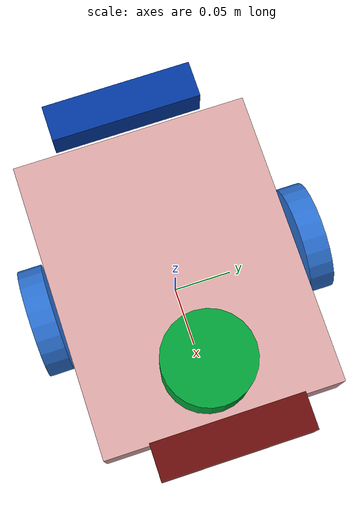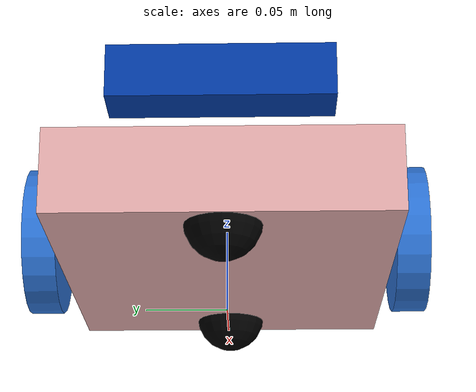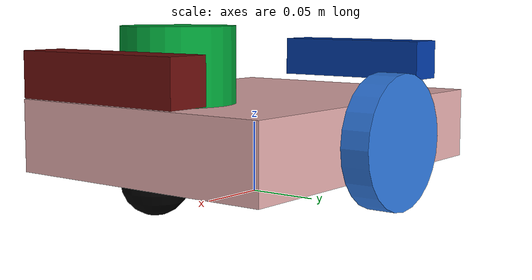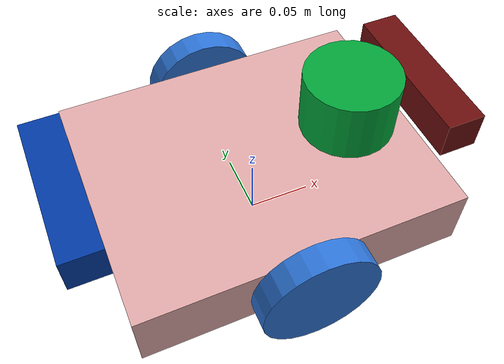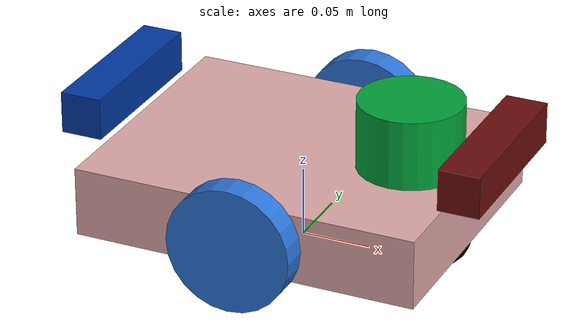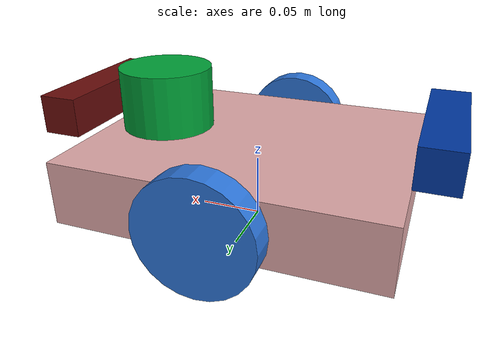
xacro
<?xml version="1.0"?>
<robot name="universalbot_2wd" xmlns:xacro="http://ros.org/wiki/xacro">

  <!-- 원점에서 X축 -->
  <xacro:property name="base_length" value="0.25" />
  <!-- 원점에서 Y축 -->
  <xacro:property name="base_width" value="0.2" />
  <!-- 원점에서 Z축 -->
  <xacro:property name="base_height" value="0.05" />
  <xacro:property name="base_mass" value="1" />

  <xacro:property name="wheel_radius" value="0.045" />
  <xacro:property name="wheel_width" value="0.02" />

  <xacro:property name="wheel_pos_x" value="0.0" />
  <xacro:property name="wheel_pos_y" value="0.112" />
  <xacro:property name="wheel_pos_z" value="0.0" />

  <xacro:property name="wheel_mass" value=".1" />
  <xacro:property name="wheel_torque" value="20" />

  <xacro:property name="front_caster_wheel" value="true" />
  <xacro:property name="rear_caster_wheel" value="true" />

  <xacro:include filename="$(find universalbot_description)/urdf/mech/base.urdf.xacro" />

  <xacro:include filename="$(find universalbot_description)/urdf/mech/wheel.urdf.xacro" />
  <xacro:include filename="$(find universalbot_description)/urdf/mech/caster_wheel.urdf.xacro" />

  <xacro:include filename="$(find universalbot_description)/urdf/sensors/camera.urdf.xacro" />
  <xacro:include filename="$(find universalbot_description)/urdf/sensors/generic_laser.urdf.xacro" />

  <xacro:include filename="$(find universalbot_description)/urdf/sensors/depth_sensor.urdf.xacro" />
  <xacro:include filename="$(find universalbot_description)/urdf/sensors/imu.urdf.xacro" />
  <xacro:include filename="$(find universalbot_description)/urdf/controllers/diff_drive.urdf.xacro" />

  <xacro:base length="${base_length}" width="${base_width}" height="${base_height}" mass="${base_mass}" wheel_radius="${wheel_radius}" wheel_pos_z="${wheel_pos_z}" />

  <xacro:wheel side="left" radius="${wheel_radius}" width="${wheel_width}" pos_x="${wheel_pos_x}" pos_y="${wheel_pos_y}" pos_z="${wheel_pos_z}" mass="${wheel_mass}" />

  <xacro:wheel side="right" radius="${wheel_radius}" width="${wheel_width}" pos_x="${wheel_pos_x}" pos_y="${-wheel_pos_y}" pos_z="${wheel_pos_z}" mass="${wheel_mass}" />

  <xacro:if value="${front_caster_wheel}">
    <xacro:caster_wheel side="front" mass="0.01" base_length="${base_length}" wheel_radius="${wheel_radius}" wheel_pos_z="${wheel_pos_z}" />
  </xacro:if>

  <xacro:if value="${rear_caster_wheel}">
    <xacro:caster_wheel side="rear" mass="0.01" base_length="${base_length}" wheel_radius="${wheel_radius}" wheel_pos_z="${wheel_pos_z}" />
  </xacro:if>

  <xacro:property name="laser_pose">
    <origin xyz="0.08 0 0.075" rpy="0 0 0"/>
  </xacro:property>

  <xacro:generic_laser>
    <xacro:insert_block name="laser_pose" />
  </xacro:generic_laser>

  <xacro:property name="depth_sensor_pose">
    <origin xyz="0.14 0.0 0.045" rpy="0 0 0"/>
  </xacro:property>

  <xacro:property name="rear_camera_sensor_pose">
    <origin xyz="-0.14 0.0 0.045" rpy="0 0 3.14159"/>
  </xacro:property>

  <xacro:imu/>

  <xacro:depth_sensor>
    <xacro:insert_block name="depth_sensor_pose" />
  </xacro:depth_sensor>

  <xacro:rgb_camera parent="base_link" name="rear_rgb_camera" topic_name="rear_rgb_camera/image" >
    <xacro:insert_block name="rear_camera_sensor_pose" />
  </xacro:rgb_camera>

  <xacro:diff_drive_controller wheel_separation="${wheel_pos_y * 2}" wheel_radius="${wheel_radius}" wheel_torque="${wheel_torque}" />

</robot>

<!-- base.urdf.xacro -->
<robot xmlns:xacro="http://ros.org/wiki/xacro">
  <xacro:macro name="base" params="length width height mass wheel_radius wheel_pos_z">

    <link name="base_footprint"/>

    <link name="base_link">
      <visual>
        <origin xyz="0 0 0" rpy="0 0 0"/>
        <geometry>
          <box size="${length} ${width} ${height}"/>
        </geometry>
        <material name="yellow">
          <color rgba="0.8784 0.6627 0.6627 1.0"/>
        </material>
      </visual>
      <collision>
        <origin xyz="0 0 0" rpy="0 0 0"/>
        <geometry>
          <box size="${length} ${width} ${height}"/>
        </geometry>
      </collision>
      <inertial>
        <origin xyz="0 0 0" rpy="0 0 0"/>
        <mass value="${mass}"/>
        <inertia ixx="${(1/12) * mass * ((width  * width)  + (height * height))}" ixy="0.0" ixz="0.0"
                 iyy="${(1/12) * mass * ((length * length) + (height * height))}" iyz="0.0"
                 izz="${(1/12) * mass * ((length * length) + (width  * width))}"/>
      </inertial>
    </link>
    <gazebo reference="base_link">
      <visual>
        <material>
          <ambient>0.8392 0.6314 0.0 1.0</ambient>
          <diffuse>0.8392 0.6314 0.0 1.0</diffuse>
          <specular>0.99 0.99 0.99 1.0</specular>
          <emissive>0.0 0.0 0.0 0.0</emissive>
        </material>
      </visual>
    </gazebo>

    <joint name="base_to_footprint" type="fixed">
      <parent link="base_footprint"/>
      <child link="base_link"/>
      <origin xyz="0 0 ${wheel_radius - wheel_pos_z}" rpy="0 0 0"/>

    </joint>
  </xacro:macro>
</robot>

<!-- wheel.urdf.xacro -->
<robot xmlns:xacro="http://ros.org/wiki/xacro">
  <xacro:macro name="wheel" params="side radius width pos_x pos_y pos_z mass">
    <link name="${side}_wheel_link">
      <visual>
        <origin xyz="0 0 0" rpy="${pi/2} 0 0"/>
        <geometry>
          <cylinder radius="${radius}" length="${width}"/>
        </geometry>
        <material name="blue">
            <color rgba="0.1764 0.4588 0.8509 1.0"/>
        </material>
      </visual>

      <collision>
        <origin xyz="0 0 0" rpy="${pi/2} 0 0"/>
        <geometry>
          <cylinder radius="${radius}" length="${width}"/>
        </geometry>
      </collision>

      <inertial>
        <origin xyz="0 0 0" rpy="0 0 0"/>
        <mass value="${mass}"/>
        <inertia ixx="${(2/5) * mass * (radius * radius)}" ixy="0" ixz="0"
                 iyy="${(2/5) * mass * (radius * radius)}" iyz="0"
                 izz="${(2/5) * mass * (radius * radius)}" />
      </inertial>
    </link>

    <gazebo reference="${side}_wheel_link">
      <visual>
        <material>
          <ambient>0.1764 0.4588 0.8509 1.0</ambient>
          <diffuse>0.1764 0.4588 0.8509 1.0</diffuse>
          <specular>0.1764 0.4588 0.8509 1.0</specular>
          <emissive>0.0 0.0 0.0 0.0</emissive>
        </material>
      </visual>
    </gazebo>

    <joint name="${side}_wheel_joint" type="continuous">
      <axis xyz="0 1 0" />
      <parent link="base_link"/>
      <child link="${side}_wheel_link"/>
      <origin xyz="${pos_x} ${pos_y} ${pos_z}" rpy="0 0 0"/>
    </joint>
  </xacro:macro>
</robot>

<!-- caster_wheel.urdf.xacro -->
<robot xmlns:xacro="http://ros.org/wiki/xacro">
  <xacro:macro name="caster_wheel" params="side mass base_length wheel_radius wheel_pos_z">

    <xacro:property name="caster_wheel_radius" value="${(wheel_radius - wheel_pos_z) / 2}" />

    <xacro:if value="${side == 'front'}">
        <xacro:property name="caster_wheel_x" value="${(base_length / 2) - caster_wheel_radius}" />
    </xacro:if>

    <xacro:if value="${side == 'rear'}">
        <xacro:property name="caster_wheel_x" value="${-(base_length / 2) + caster_wheel_radius}" />
    </xacro:if>

    <link name="${side}_caster_wheel_link">
      <visual>
        <origin xyz="0 0 0" rpy="0 0 0"/>
        <geometry>
          <sphere radius="${caster_wheel_radius}" />
        </geometry>
        <material name="black">
            <color rgba="0.0 0.0 0.0 1.0"/>
        </material>
      </visual>
      <collision>
        <origin xyz="0 0 0" rpy="0 0 0"/>
        <geometry>
          <sphere radius="${caster_wheel_radius}" />
        </geometry>
      </collision>
      <inertial>
        <origin xyz="0 0 0" rpy="0 0 0"/>
        <mass value="${mass}"/>
        <inertia ixx="${(2/5) * mass * (caster_wheel_radius * caster_wheel_radius)}" ixy="0" ixz="0"
                 iyy="${(2/5) * mass * (caster_wheel_radius * caster_wheel_radius)}" iyz="0"
                 izz="${(2/5) * mass * (caster_wheel_radius * caster_wheel_radius)}" />
      </inertial>
    </link>

    <gazebo reference="${side}_caster_wheel_link">
        <mu1>0.01</mu1>
        <mu2>0.01</mu2>
    </gazebo>

    <joint name="${side}_caster_wheel_joint" type="fixed">
      <parent link="base_link"/>
      <child link="${side}_caster_wheel_link"/>
      <origin xyz="${caster_wheel_x} 0 -${caster_wheel_radius}" rpy="0 0 0"/>
    </joint>
  </xacro:macro>
</robot>

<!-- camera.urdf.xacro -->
<robot xmlns:xacro="http://ros.org/wiki/xacro">
  <xacro:property name="M_PI" value="3.1415926535897931" />
  <xacro:macro name="rgb_camera" params="*origin parent name topic_name">
    <link name="${name}_link">
      <visual>
        <origin xyz="0 0 0" rpy="0 0 0"/>
        <geometry>
          <box size="0.030 0.124 0.030"/>
        </geometry>
        <material name="blue">
          <color rgba="0.003 0.223 0.639 1.0"/>
        </material>
      </visual>
      <collision>
        <origin xyz="0 0 0" rpy="0 0 0"/>
        <geometry>
          <box size="0.030 0.124 0.030"/>
        </geometry>
      </collision>
      <inertial>
        <origin xyz="0 0 0" rpy="0 0 0"/>
        <mass value="0.135"/>
        <inertia ixx="${(1/12) * 0.135 * ((0.124  * 0.124)  + (0.030 * 0.030))}" ixy="0.0" ixz="0.0"
                 iyy="${(1/12) * 0.135 * ((0.030 * 0.030) + (0.030 * 0.030))}" iyz="0.0"
                 izz="${(1/12) * 0.135 * ((0.030 * 0.030) + (0.124  * 0.124))}"/>
      </inertial>
    </link>

    <gazebo reference="${name}_link">
      <visual>
        <material>
          <ambient>0.051 0.047 0.416 1.0</ambient>
          <diffuse>0.051 0.047 0.416 1.0</diffuse>
          <specular>0.051 0.047 0.416 1.0</specular>
          <emissive>0.051 0.047 0.416 1.0</emissive>
        </material>
      </visual>
    </gazebo>

    <joint name="${name}_to_${parent}" type="fixed">
      <parent link="${parent}"/>
      <child link="${name}_link"/>

      <xacro:insert_block name="origin" />
    </joint>

    <link name="${name}_optical_link"/>
    <joint name="${name}_optical_joint" type="fixed">
      <parent link="${name}_link"/>
      <child link="${name}_optical_link"/>
      <origin xyz="0 0 0" rpy="-1.57 0 -1.57"/>
    </joint>

    <!-- https://github.com/ros-simulation/gazebo_ros_pkgs/wiki/ROS-2-Migration:-Camera#gazebo_ros_camera -->
    <gazebo reference="${name}_link">
      <sensor name="${name}" type="camera">
        <always_on>true</always_on>
        <update_rate>30.0</update_rate>
        <camera name="${name}">
          <horizontal_fov>1.50098</horizontal_fov>
          <image>
            <width>640</width>
            <height>480</height>
            <format>R8G8B8</format>
          </image>
        </camera>
        <plugin name="rgb_${name}_controller" filename="libgazebo_ros_camera.so">
          <ros>
            <remapping>${name}/image_raw:=${topic_name}</remapping>
          </ros>

          <hack_baseline>0.07</hack_baseline>

          <frame_name>${name}_optical_link</frame_name>

          <distortion_k1>0.00000001</distortion_k1>
          <distortion_k2>0.00000001</distortion_k2>
          <distortion_k3>0.00000001</distortion_k3>
          <distortion_t1>0.00000001</distortion_t1>
          <distortion_t2>0.00000001</distortion_t2>
        </plugin>
      </sensor>
    </gazebo>
  </xacro:macro>
</robot>

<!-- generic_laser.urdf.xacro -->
<robot xmlns:xacro="http://ros.org/wiki/xacro">

  <xacro:include filename="$(find universalbot_description)/urdf/sensors/laser.urdf.xacro" />

  <xacro:macro name="generic_laser" params="*origin">
    <xacro:laser
      update_rate="10"
      ray_count="360"
      min_angle="-3.1416"
      max_angle="3.1416"
      min_range="0.08"
      max_range="12.0"
      frame_id="laser"
      topic_name="scan"
    >
      <xacro:insert_block name="origin" />

    </xacro:laser>
  </xacro:macro>

  <xacro:macro name="generic_base_laser" params="*origin">
    <xacro:laser
      update_rate="10"
      ray_count="360"
      min_angle="-3.1416"
      max_angle="3.1416"
      min_range="0.21"
      max_range="5.5"
      frame_id="base_laser"
      topic_name="base/scan"
    >
      <xacro:insert_block name="origin" />

    </xacro:laser>
  </xacro:macro>
</robot>

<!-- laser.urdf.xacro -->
<robot xmlns:xacro="http://ros.org/wiki/xacro">
  <xacro:property name="M_PI" value="3.1415926535897931"/>

  <xacro:macro name="laser" params="*origin update_rate ray_count min_angle max_angle min_range max_range frame_id topic_name">
    <link name="${frame_id}">
      <visual>
        <!--Joint: 부모 링크 기준 → 현재 링크 좌표계 생성: Visual Origin: 현재 링크 좌표계 기준 → 도형(Mesh) 배치
          -->
        <origin xyz="0 0 -0.025" rpy="0 0 0"/>
        <geometry>
          <cylinder radius="0.0375" length="0.05"/>
        </geometry>
        <material name="green">
            <color rgba="0.003 0.639 0.223 1.0"/>
        </material>
      </visual>
      <collision>
        <origin xyz="0 0 -0.025" rpy="0 0 0"/>
        <geometry>
          <cylinder radius="0.0375" length="0.05"/>
        </geometry>
      </collision>
      <inertial>
        <origin xyz="0 0 -0.025" rpy="0 0 0"/>
        <mass value="0.1"/>
        <inertia ixx="${(2/5) * 0.1 * (0.0375 * 0.0375)}" ixy="0" ixz="0"
                 iyy="${(2/5) * 0.1 * (0.0375 * 0.0375)}" iyz="0"
                 izz="${(2/5) * 0.1 * (0.0375 * 0.0375)}" />
      </inertial>
    </link>

    <joint name="${frame_id}_to_base_link" type="fixed">
      <parent link="base_link"/>
      <child link="${frame_id}"/>

      <xacro:insert_block name="origin"/>

    </joint>

    <gazebo reference="${frame_id}">
      <visual>
        <material>
          <ambient>0.003 0.639 0.223 1.0</ambient>
          <diffuse>0.003 0.639 0.223 1.0</diffuse>
          <specular>0.003 0.639 0.223 1.0</specular>
          <emissive>0.0 0.0 0.0 0.0</emissive>
        </material>
      </visual>
    </gazebo>

    <gazebo reference="${frame_id}">
      <sensor type="gpu_ray" name="${frame_id}_lidar">
        <always_on>true</always_on>
        <update_rate>${update_rate}</update_rate>
        <pose>0 0 0 0 0 0</pose>
        <visualize>false</visualize>
        <ray>
          <scan>
            <horizontal>
              <samples>${ray_count}</samples>
              <resolution>1</resolution>
              <min_angle>${min_angle}</min_angle>
              <max_angle>${max_angle}</max_angle>
            </horizontal>
          </scan>
          <range>
            <min>${min_range}</min>
            <max>${max_range}</max>
            <resolution>0.01</resolution>
          </range>
        </ray>
        <plugin name="${frame_id}_lidar_controller" filename="libgazebo_ros_ray_sensor.so">
          <ros>
            <remapping>~/out:=${topic_name}</remapping>
          </ros>
          <output_type>sensor_msgs/LaserScan</output_type>
          <alwaysOn>true</alwaysOn>
          <updateRate>${update_rate}</updateRate>
          <topicName>${topic_name}</topicName>
          <frame_name>${frame_id}</frame_name>
          <output_type>sensor_msgs/LaserScan</output_type>
        </plugin>
      </sensor>
    </gazebo>
  </xacro:macro>
</robot>

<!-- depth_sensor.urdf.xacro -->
<robot xmlns:xacro="http://ros.org/wiki/xacro">
  <xacro:property name="M_PI" value="3.1415926535897931" />

  <xacro:macro name="depth_sensor" params="*origin">
    <link name="camera_link">
      <visual>
        <origin xyz="0 0 0" rpy="0 0 0"/>
        <geometry>
          <box size="0.030 0.124 0.030"/>
        </geometry>
        <material name="red">
          <color rgba="0.416 0.051 0.047 1.0"/>
        </material>
      </visual>
      <collision>
        <origin xyz="0 0 0" rpy="0 0 0"/>
        <geometry>
          <box size="0.030 0.124 0.030"/>
        </geometry>
      </collision>
      <inertial>
        <origin xyz="0 0 0" rpy="0 0 0"/>
        <mass value="0.135"/>
        <inertia ixx="${(1/12) * 0.135 * ((0.124  * 0.124)  + (0.030 * 0.030))}" ixy="0.0" ixz="0.0"
                 iyy="${(1/12) * 0.135 * ((0.030 * 0.030) + (0.030 * 0.030))}" iyz="0.0"
                 izz="${(1/12) * 0.135 * ((0.030 * 0.030) + (0.124  * 0.124))}"/>
      </inertial>
    </link>

    <joint name="camera_to_base_link" type="fixed">
      <parent link="base_link"/>
      <child link="camera_link"/>
      <xacro:insert_block name="origin" />
    </joint>

    <gazebo reference="camera_link">
      <visual>
        <material>
          <ambient>0.416 0.051 0.047 1.0</ambient>
          <diffuse>0.416 0.051 0.047 1.0</diffuse>
          <specular>0.416 0.051 0.047 1.0</specular>
          <emissive>0.416 0.051 0.047 1.0</emissive>
        </material>
      </visual>
    </gazebo>rgb(213,28,40)

    <link name="camera_depth_link"/>

    <joint name="camera_depth_joint" type="fixed">
      <origin xyz="0 0 0" rpy="-1.57 0 -1.57"/>
      <parent link="camera_link"/>
      <child link="camera_depth_link"/>
    </joint>

    <!-- https://github.com/ros-simulation/gazebo_ros_pkgs/wiki/ROS-2-Migration:-Camera#gazebo_ros_camera -->
    <gazebo reference="camera_link">
      <sensor name="camera" type="depth">
        <always_on>true</always_on>
        <update_rate>30.0</update_rate>
        <camera name="camera">
          <horizontal_fov>1.50098</horizontal_fov>
          <image>
            <width>640</width>
            <height>480</height>
            <format>R8G8B8</format>
          </image>
        </camera>
        <plugin name="depth_camera_controller" filename="libgazebo_ros_camera.so">
          <ros>
            <remapping>/camera/camera_info:=/camera/color/camera_info</remapping>
            <remapping>/camera/image_raw:=/camera/color/image_raw</remapping>
            <remapping>/camera/points:=/camera/depth/color/points</remapping>
            <remapping>/camera/depth/image_raw:=/camera/depth/image_rect_raw</remapping>
            <qos>
              <topic name="/camera/depth/color/points">
                <publisher>
                  <reliability>best_effort</reliability>
                </publisher>
              </topic>
            </qos>
          </ros>
          <min_depth>0.015</min_depth>
          <max_depth>3.0</max_depth>
          <hack_baseline>0.07</hack_baseline>
          <frame_name>camera_depth_link</frame_name>
          <distortion_k1>0.00000001</distortion_k1>
          <distortion_k2>0.00000001</distortion_k2>
          <distortion_k3>0.00000001</distortion_k3>
          <distortion_t1>0.00000001</distortion_t1>
          <distortion_t2>0.00000001</distortion_t2>
        </plugin>
      </sensor>

    </gazebo>
  </xacro:macro>
</robot>

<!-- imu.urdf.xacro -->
<robot xmlns:xacro="http://ros.org/wiki/xacro">
  <xacro:macro name="imu">

    <link name="imu_link"/>

    <joint name="imu_to_base_link" type="fixed">
      <parent link="base_link"/>
      <child link="imu_link"/>
      <origin xyz="0 0 0" rpy="0 0 0"/>
    </joint>

    <gazebo reference="imu_link">
      <gravity>true</gravity>
      <sensor name="imu_sensor" type="imu">
        <always_on>true</always_on>
        <update_rate>20</update_rate>
        <visualize>true</visualize>
        <topic>__default_topic__</topic>
        <plugin filename="libgazebo_ros_imu_sensor.so" name="imu_plugin">
            <ros>
              <remapping>~/out:=imu/data</remapping>
            </ros>
            <topicName>imu/data</topicName>
            <bodyName>imu_link</bodyName>
            <updateRateHZ>10.0</updateRateHZ>
            <gaussianNoise>0.0</gaussianNoise>
            <xyzOffset>0 0 0</xyzOffset>
            <rpyOffset>0 0 0</rpyOffset>
            <frameName>imu_link</frameName>
            <initialOrientationAsReference>false</initialOrientationAsReference>
        </plugin>
        <pose>0 0 0 0 0 0</pose>
      </sensor>
    </gazebo>
  </xacro:macro>
</robot>
